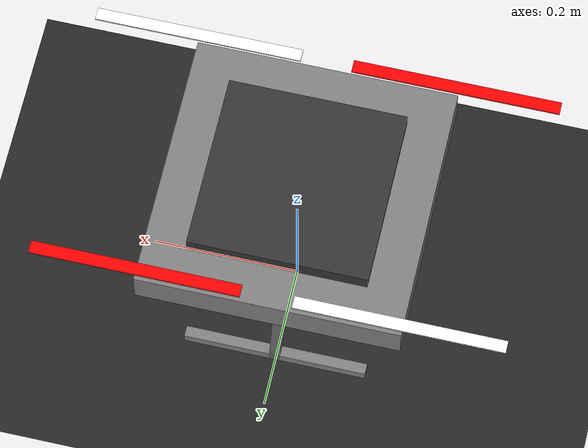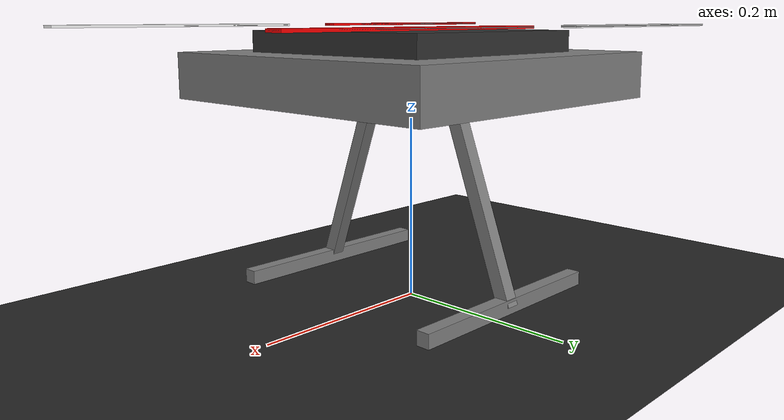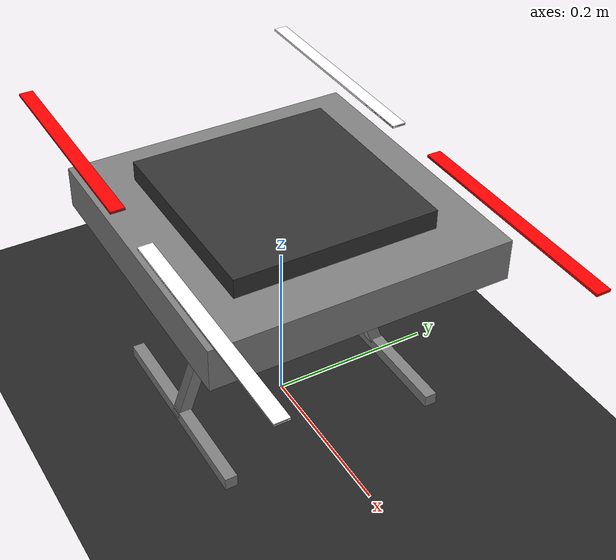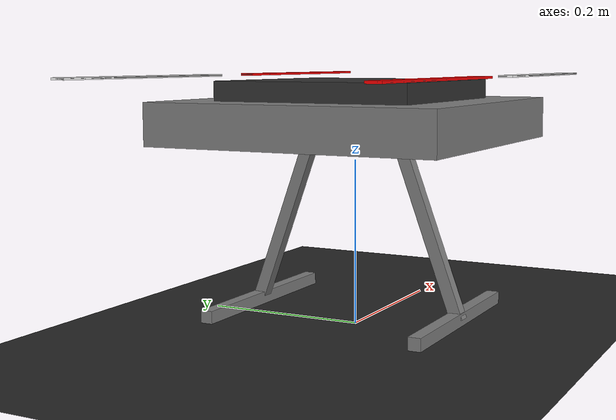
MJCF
<mujoco model="x500_base">
    <compiler angle="radian"/>

    <option gravity="0 0 -9.81"/>

    <asset>
        <texture type="skybox" builtin="gradient" rgb1="0.3 0.5 0.7" rgb2="0 0 0" width="512" height="512"/>
        <texture name="grid" type="2d" builtin="checker" rgb1="0.1 0.1 0.1" rgb2="0.2 0.2 0.2" width="512" height="512" mark="cross" markrgb="0.5 0.5 0.5"/>
        <material name="grid_floor" texture="grid" texrepeat="1 1" texuniform="true"/>
    </asset>

    <worldbody>
        <light pos="0 0 10" dir="0 0 -1"/>
        <geom name="floor" type="plane" size="10 10 0.1" material="grid_floor"/>

        <!-- Model translation to z=0.24 derived from x500_base.sdf -->
        <body name="base_link" pos="0 0 0.24">
            <freejoint name="base_link_freejoint"/>

            <inertial pos="0 0 0" mass="2.0" diaginertia="0.02166666666666667 0.02166666666666667 0.04000000000000001"/>

            <!-- Visual Base Representation -->
            <geom name="base_visual" type="box" pos="0 0 0.025" size="0.12 0.12 0.03" rgba="0.2 0.2 0.2 1" contype="0" conaffinity="0"/>

            <!-- Base Collisions -->
            <geom name="base_link_collision_0" type="box" pos="0 0 0.007" euler="0 0 0" size="0.17677669529663687 0.17677669529663687 0.025"/>
            <geom name="base_link_collision_1" type="box" pos="0 -0.098 -0.123" euler="-0.35 0 0" size="0.0075 0.0075 0.105"/>
            <geom name="base_link_collision_2" type="box" pos="0 0.098 -0.123" euler="0.35 0 0" size="0.0075 0.0075 0.105"/>
            <geom name="base_link_collision_3" type="box" pos="0 -0.132 -0.2195" euler="0 0 0" size="0.125 0.0075 0.0075"/>
            <geom name="base_link_collision_4" type="box" pos="0 0.132 -0.2195" euler="0 0 0" size="0.125 0.0075 0.0075"/>

            <!-- Rotor 0 (CCW) -->
            <body name="rotor_0" pos="0.174 -0.174 0.06">
                <joint name="rotor_0_joint" type="hinge" pos="0 0 0" axis="0 0 1" limited="false" springref="0" stiffness="0"/>
                <inertial pos="0 0 0" mass="0.016076923076923075" diaginertia="3.8464910483993325e-07 2.6115851691700804e-05 2.649858234714004e-05"/>
                <!--geom name="rotor_0_visual" type="cylinder" pos="0 0 0" size="0.1396 0.002" rgba="0.1 0.1 0.1 1" contype="0" conaffinity="0"/-->
		<geom name="rotor_0_visual"    type="box" pos="0 0 0" euler="0 0 0" size="0.1396153846153846 0.008461538461538462 0.0014" rgba="1.0 1.0 1.0 1.0" contype="0" conaffinity="0" />
                <geom name="rotor_0_collision" type="box" pos="0 0 0" euler="0 0 0" size="0.1396153846153846 0.008461538461538462 0.0004230769230769231"/>
            </body>

            <!-- Rotor 1 (CCW) -->
            <body name="rotor_1" pos="-0.174 0.174 0.06">
                <joint name="rotor_1_joint" type="hinge" pos="0 0 0" axis="0 0 1" limited="false" springref="0" stiffness="0"/>
                <inertial pos="0 0 0" mass="0.016076923076923075" diaginertia="3.8464910483993325e-07 2.6115851691700804e-05 2.649858234714004e-05"/>
                <!--geom name="rotor_1_visual" type="cylinder" pos="0 0 0" size="0.1396 0.002" rgba="0.1 0.1 0.1 1" contype="0" conaffinity="0"/-->
		<geom name="rotor_1_visual"    type="box" pos="0 0 0" euler="0 0 0" size="0.1396153846153846 0.008461538461538462 0.0014" rgba="1.0 1.0 1.0 1.0" contype="0" conaffinity="0" />
                <geom name="rotor_1_collision" type="box" pos="0 0 0" euler="0 0 0" size="0.1396153846153846 0.008461538461538462 0.0004230769230769231"/>
            </body>

            <!-- Rotor 2 (CW) -->
            <body name="rotor_2" pos="0.174 0.174 0.06">
                <joint name="rotor_2_joint" type="hinge" pos="0 0 0" axis="0 0 1" limited="false" springref="0" stiffness="0"/>
                <inertial pos="0 0 0" mass="0.016076923076923075" diaginertia="3.8464910483993325e-07 2.6115851691700804e-05 2.649858234714004e-05"/>
                <!--geom name="rotor_2_visual" type="cylinder" pos="0 0 0" size="0.1396 0.002" rgba="0.7 0.1 0.1 1" contype="0" conaffinity="0"/-->
		<geom name="rotor_2_visual"    type="box" pos="0 0 0" euler="0 0 0" size="0.1396153846153846 0.008461538461538462 0.0014" rgba="1.0 0.0 0.0 1.0" contype="0" conaffinity="0" />
                <geom name="rotor_2_collision" type="box" pos="0 0 0" euler="0 0 0" size="0.1396153846153846 0.008461538461538462 0.0004230769230769231"/>
            </body>

            <!-- Rotor 3 (CW) -->
            <body name="rotor_3" pos="-0.174 -0.174 0.06">
                <joint name="rotor_3_joint" type="hinge" pos="0 0 0" axis="0 0 1" limited="false" springref="0" stiffness="0"/>
                <inertial pos="0 0 0" mass="0.016076923076923075" diaginertia="3.8464910483993325e-07 2.6115851691700804e-05 2.649858234714004e-05"/>
                <!--geom name="rotor_3_visual" type="cylinder" pos="0 0 0" size="0.1396 0.002" rgba="0.7 0.1 0.1 1" contype="0" conaffinity="0"/-->
		<geom name="rotor_3_visual"    type="box" pos="0 0 0" euler="0 0 0" size="0.1396153846153846 0.008461538461538462 0.0014" rgba="1.0 0.0 0.0 1.0" contype="0" conaffinity="0" />
                <geom name="rotor_3_collision" type="box" pos="0 0 0" euler="0 0 0" size="0.1396153846153846 0.008461538461538462 0.0004230769230769231"/>
            </body>
        </body>
    </worldbody>
</mujoco>
